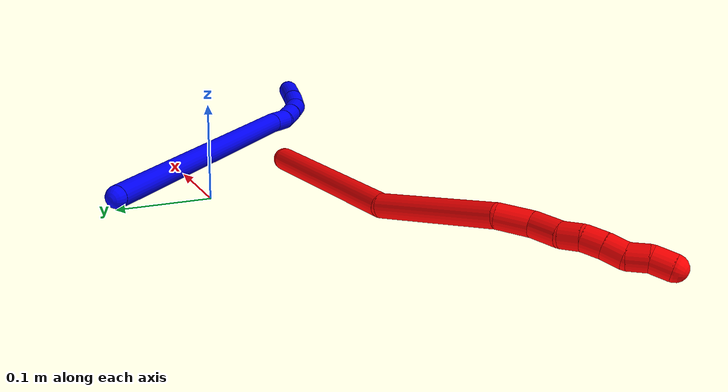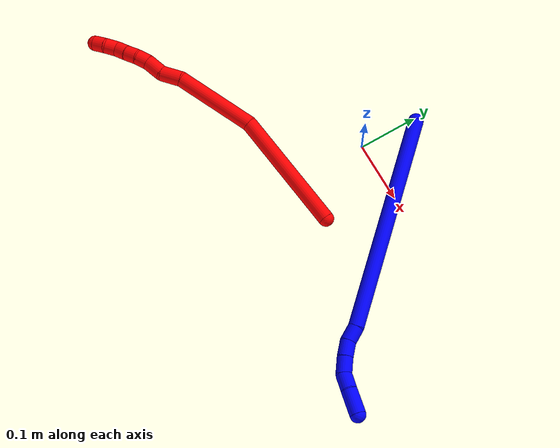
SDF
<sdf version="1.7">
 <world name="default">
  <model name="photoneo_s_sensor">
   <static>1</static>
   <pose>0 0 2 1.57079 1.57079 3.14159</pose>
   <link name="link">
    <inertial><mass>0.1</mass></inertial>
    <sensor name="sensor" type="depth">
     <update_rate>30</update_rate>
     <camera>
      <horizontal_fov>1.22</horizontal_fov>
      <image><width>1920</width><height>1200</height><format>B8G8R8</format></image>
      <clip><near>0.1</near><far>4</far></clip>
      <depth_camera><output>points</output></depth_camera>
     </camera>
     <plugin name="camera_plugin" filename="libgazebo_ros_depth_camera.so">
      <baseline>0.2</baseline>
      <alwaysOn>1</alwaysOn>
      <updateRate>0.0</updateRate>
      <cameraName>camera_ir</cameraName>
      <imageTopicName>/camera/color/image_raw</imageTopicName>
      <cameraInfoTopicName>/camera/color/camera_info</cameraInfoTopicName>
      <depthImageTopicName>/camera/depth/image_raw</depthImageTopicName>
      <depthImageCameraInfoTopicName>/camera/depth/camera_info</depthImageCameraInfoTopicName>
      <pointCloudTopicName>/camera/depth/points</pointCloudTopicName>
      <frameName>fr_optical</frameName>
      <pointCloudCutoff>0.1</pointCloudCutoff>
      <pointCloudCutoffMax>2.0</pointCloudCutoffMax>
      <distortionK1>0</distortionK1>
      <distortionK2>0</distortionK2>
      <distortionK3>0</distortionK3>
      <distortionT1>0</distortionT1>
      <distortionT2>0</distortionT2>
      <CxPrime>0</CxPrime>
      <Cx>0</Cx>
      <Cy>0</Cy>
      <focalLength>0</focalLength>
      <hackBaseline>0</hackBaseline>
     </plugin>
    </sensor>
   </link>
  </model>
  <model name="bin">
   <static>1</static>
   <link name="bottom">
    <collision name="collision-bottom">
     <pose>0 0 -0.01 0 -0 0</pose>
     <geometry><box><size>0.8 0.6 0.02</size></box></geometry>
     <surface>
      <friction><ode><mu>100</mu><mu2>100</mu2></ode></friction>
      <contact><collide_bitmask>65535</collide_bitmask></contact>
     </surface>
    </collision>
   </link>
   <link name="west_wall">
    <collision name="collision-west_wall">
     <pose>-0.41 0 0.1 0 -0 0</pose>
     <geometry><box><size>0.02 0.6 0.2</size></box></geometry>
     <surface>
      <friction><ode><mu>100</mu><mu2>100</mu2></ode></friction>
      <contact><collide_bitmask>65535</collide_bitmask></contact>
     </surface>
    </collision>
   </link>
   <link name="east_wall">
    <collision name="collision-east_wall">
     <pose>0.41 0 0.1 0 -0 0</pose>
     <geometry><box><size>0.02 0.6 0.2</size></box></geometry>
     <surface>
      <friction><ode><mu>100</mu><mu2>100</mu2></ode></friction>
      <contact><collide_bitmask>65535</collide_bitmask></contact>
     </surface>
    </collision>
   </link>
   <link name="south_wall">
    <collision name="collision-south_wall">
     <pose>0 -0.31 0.1 0 -0 0</pose>
     <geometry><box><size>0.8 0.02 0.2</size></box></geometry>
     <surface>
      <friction><ode><mu>100</mu><mu2>100</mu2></ode></friction>
      <contact><collide_bitmask>65535</collide_bitmask></contact>
     </surface>
    </collision>
   </link>
   <link name="north_wall">
    <collision name="collision-north_wall">
     <pose>0 0.31 0.1 0 -0 0</pose>
     <geometry><box><size>0.8 0.02 0.2</size></box></geometry>
     <surface>
      <friction><ode><mu>100</mu><mu2>100</mu2></ode></friction>
      <contact><collide_bitmask>65535</collide_bitmask></contact>
     </surface>
    </collision>
   </link>
  </model>
  <model name="1">
   <static>0</static>
   <link name="1">
    <collision name="collision-cylinder-e_1_1_4">
     <pose>0.007747 -0.009947 0.177189 0.05608 0.043627 0.001224</pose>
     <geometry><cylinder><radius>0.0125</radius><length>0.355274</length></cylinder></geometry>
     <surface>
      <friction><ode><mu>1.16</mu><mu2>1.16</mu2><slip1>0</slip1><slip2>0</slip2></ode></friction>
      <contact><ode><kp>1e+06</kp><kd>1</kd><max_vel>0</max_vel><min_depth>0.001</min_depth></ode></contact>
     </surface>
    </collision>
    <visual name="visual-cylinder-e_1_1_4">
     <pose>0.007747 -0.009947 0.177189 0.05608 0.043627 0.001224</pose>
     <geometry><cylinder><radius>0.0125</radius><length>0.355274</length></cylinder></geometry>
     <material><ambient>0 0 1 1</ambient></material>
    </visual>
    <collision name="collision-cylinder-e_2_4_5">
     <pose>0.013255 -0.020672 0.36704 0.061323 -0.174756 -0.005374</pose>
     <geometry><cylinder><radius>0.0125</radius><length>0.025763</length></cylinder></geometry>
     <surface>
      <friction><ode><mu>1.16</mu><mu2>1.16</mu2><slip1>0</slip1><slip2>0</slip2></ode></friction>
      <contact><ode><kp>1e+06</kp><kd>1</kd><max_vel>0</max_vel><min_depth>0.001</min_depth></ode></contact>
     </surface>
    </collision>
    <visual name="visual-cylinder-e_2_4_5">
     <pose>0.013255 -0.020672 0.36704 0.061323 -0.174756 -0.005374</pose>
     <geometry><cylinder><radius>0.0125</radius><length>0.025763</length></cylinder></geometry>
     <material><ambient>0 0 1 1</ambient></material>
    </visual>
    <collision name="collision-cylinder-e_3_5_6">
     <pose>0.012697 -0.020542 0.392455 -0.071066 0.130795 -0.004656</pose>
     <geometry><cylinder><radius>0.0125</radius><length>0.025792</length></cylinder></geometry>
     <surface>
      <friction><ode><mu>1.16</mu><mu2>1.16</mu2><slip1>0</slip1><slip2>0</slip2></ode></friction>
      <contact><ode><kp>1e+06</kp><kd>1</kd><max_vel>0</max_vel><min_depth>0.001</min_depth></ode></contact>
     </surface>
    </collision>
    <visual name="visual-cylinder-e_3_5_6">
     <pose>0.012697 -0.020542 0.392455 -0.071066 0.130795 -0.004656</pose>
     <geometry><cylinder><radius>0.0125</radius><length>0.025792</length></cylinder></geometry>
     <material><ambient>0 0 1 1</ambient></material>
    </visual>
    <collision name="collision-cylinder-e_4_6_7">
     <pose>0.017607 -0.019044 0.418262 -0.045157 0.24218 -0.005496</pose>
     <geometry><cylinder><radius>0.0125</radius><length>0.026919</length></cylinder></geometry>
     <surface>
      <friction><ode><mu>1.16</mu><mu2>1.16</mu2><slip1>0</slip1><slip2>0</slip2></ode></friction>
      <contact><ode><kp>1e+06</kp><kd>1</kd><max_vel>0</max_vel><min_depth>0.001</min_depth></ode></contact>
     </surface>
    </collision>
    <visual name="visual-cylinder-e_4_6_7">
     <pose>0.017607 -0.019044 0.418262 -0.045157 0.24218 -0.005496</pose>
     <geometry><cylinder><radius>0.0125</radius><length>0.026919</length></cylinder></geometry>
     <material><ambient>0 0 1 1</ambient></material>
    </visual>
    <collision name="collision-cylinder-e_5_7_8">
     <pose>0.028088 -0.015578 0.44183 -0.267026 0.58711 -0.081157</pose>
     <geometry><cylinder><radius>0.0125</radius><length>0.026187</length></cylinder></geometry>
     <surface>
      <friction><ode><mu>1.16</mu><mu2>1.16</mu2><slip1>0</slip1><slip2>0</slip2></ode></friction>
      <contact><ode><kp>1e+06</kp><kd>1</kd><max_vel>0</max_vel><min_depth>0.001</min_depth></ode></contact>
     </surface>
    </collision>
    <visual name="visual-cylinder-e_5_7_8">
     <pose>0.028088 -0.015578 0.44183 -0.267026 0.58711 -0.081157</pose>
     <geometry><cylinder><radius>0.0125</radius><length>0.026187</length></cylinder></geometry>
     <material><ambient>0 0 1 1</ambient></material>
    </visual>
    <collision name="collision-cylinder-e_6_8_2">
     <pose>0.047317 -0.010789 0.468288 -0.119365 0.640813 -0.039652</pose>
     <geometry><cylinder><radius>0.0125</radius><length>0.040064</length></cylinder></geometry>
     <surface>
      <friction><ode><mu>1.16</mu><mu2>1.16</mu2><slip1>0</slip1><slip2>0</slip2></ode></friction>
      <contact><ode><kp>1e+06</kp><kd>1</kd><max_vel>0</max_vel><min_depth>0.001</min_depth></ode></contact>
     </surface>
    </collision>
    <visual name="visual-cylinder-e_6_8_2">
     <pose>0.047317 -0.010789 0.468288 -0.119365 0.640813 -0.039652</pose>
     <geometry><cylinder><radius>0.0125</radius><length>0.040064</length></cylinder></geometry>
     <material><ambient>0 0 1 1</ambient></material>
    </visual>
    <collision name="collision-sphere-2">
     <pose>0.059294 -0.008877 0.484232 0 -0 0</pose>
     <geometry><sphere><radius>0.0125</radius></sphere></geometry>
     <surface>
      <friction><ode><mu>1.16</mu><mu2>1.16</mu2><slip1>0</slip1><slip2>0</slip2></ode></friction>
      <contact><ode><kp>1e+06</kp><kd>1</kd><max_vel>0</max_vel><min_depth>0.001</min_depth></ode></contact>
     </surface>
    </collision>
    <visual name="visual-sphere-2">
     <pose>0.059294 -0.008877 0.484232 0 -0 0</pose>
     <geometry><sphere><radius>0.0125</radius></sphere></geometry>
     <material><ambient>0 0 1 1</ambient></material>
    </visual>
    <collision name="collision-sphere-4">
     <pose>0.015495 -0.019895 0.354378 0 -0 0</pose>
     <geometry><sphere><radius>0.0125</radius></sphere></geometry>
     <surface>
      <friction><ode><mu>1.16</mu><mu2>1.16</mu2><slip1>0</slip1><slip2>0</slip2></ode></friction>
      <contact><ode><kp>1e+06</kp><kd>1</kd><max_vel>0</max_vel><min_depth>0.001</min_depth></ode></contact>
     </surface>
    </collision>
    <visual name="visual-sphere-4">
     <pose>0.015495 -0.019895 0.354378 0 -0 0</pose>
     <geometry><sphere><radius>0.0125</radius></sphere></geometry>
     <material><ambient>0 0 1 1</ambient></material>
    </visual>
    <collision name="collision-sphere-1">
     <geometry><sphere><radius>0.0125</radius></sphere></geometry>
     <surface>
      <friction><ode><mu>1.16</mu><mu2>1.16</mu2><slip1>0</slip1><slip2>0</slip2></ode></friction>
      <contact><ode><kp>1e+06</kp><kd>1</kd><max_vel>0</max_vel><min_depth>0.001</min_depth></ode></contact>
     </surface>
    </collision>
    <visual name="visual-sphere-1">
     <geometry><sphere><radius>0.0125</radius></sphere></geometry>
     <material><ambient>0 0 1 1</ambient></material>
    </visual>
    <collision name="collision-sphere-8">
     <pose>0.035341 -0.012701 0.452345 0 -0 0</pose>
     <geometry><sphere><radius>0.0125</radius></sphere></geometry>
     <surface>
      <friction><ode><mu>1.16</mu><mu2>1.16</mu2><slip1>0</slip1><slip2>0</slip2></ode></friction>
      <contact><ode><kp>1e+06</kp><kd>1</kd><max_vel>0</max_vel><min_depth>0.001</min_depth></ode></contact>
     </surface>
    </collision>
    <visual name="visual-sphere-8">
     <pose>0.035341 -0.012701 0.452345 0 -0 0</pose>
     <geometry><sphere><radius>0.0125</radius></sphere></geometry>
     <material><ambient>0 0 1 1</ambient></material>
    </visual>
    <collision name="collision-sphere-5">
     <pose>0.011015 -0.021449 0.379702 0 -0 0</pose>
     <geometry><sphere><radius>0.0125</radius></sphere></geometry>
     <surface>
      <friction><ode><mu>1.16</mu><mu2>1.16</mu2><slip1>0</slip1><slip2>0</slip2></ode></friction>
      <contact><ode><kp>1e+06</kp><kd>1</kd><max_vel>0</max_vel><min_depth>0.001</min_depth></ode></contact>
     </surface>
    </collision>
    <visual name="visual-sphere-5">
     <pose>0.011015 -0.021449 0.379702 0 -0 0</pose>
     <geometry><sphere><radius>0.0125</radius></sphere></geometry>
     <material><ambient>0 0 1 1</ambient></material>
    </visual>
    <collision name="collision-sphere-6">
     <pose>0.014379 -0.019634 0.405208 0 -0 0</pose>
     <geometry><sphere><radius>0.0125</radius></sphere></geometry>
     <surface>
      <friction><ode><mu>1.16</mu><mu2>1.16</mu2><slip1>0</slip1><slip2>0</slip2></ode></friction>
      <contact><ode><kp>1e+06</kp><kd>1</kd><max_vel>0</max_vel><min_depth>0.001</min_depth></ode></contact>
     </surface>
    </collision>
    <visual name="visual-sphere-6">
     <pose>0.014379 -0.019634 0.405208 0 -0 0</pose>
     <geometry><sphere><radius>0.0125</radius></sphere></geometry>
     <material><ambient>0 0 1 1</ambient></material>
    </visual>
    <collision name="collision-sphere-7">
     <pose>0.020835 -0.018454 0.431316 0 -0 0</pose>
     <geometry><sphere><radius>0.0125</radius></sphere></geometry>
     <surface>
      <friction><ode><mu>1.16</mu><mu2>1.16</mu2><slip1>0</slip1><slip2>0</slip2></ode></friction>
      <contact><ode><kp>1e+06</kp><kd>1</kd><max_vel>0</max_vel><min_depth>0.001</min_depth></ode></contact>
     </surface>
    </collision>
    <visual name="visual-sphere-7">
     <pose>0.020835 -0.018454 0.431316 0 -0 0</pose>
     <geometry><sphere><radius>0.0125</radius></sphere></geometry>
     <material><ambient>0 0 1 1</ambient></material>
    </visual>
    <inertial>
     <pose>0.013053 -0.011898 0.24824 0 -0 0</pose>
     <mass>0.5</mass>
     <inertia>
      <ixx>0.003771</ixx>
      <ixy>0</ixy>
      <ixz>0</ixz>
      <iyy>0.003765</iyy>
      <iyz>0</iyz>
      <izz>7.7e-05</izz>
     </inertia>
    </inertial>
   </link>
   <pose>0.008233 0.096355 0.011497 1.51234 0.054178 0.707566</pose>
  </model>
  <model name="2">
   <static>0</static>
   <link name="2">
    <collision name="collision-cylinder-e_1_1_4">
     <pose>-0.030995 -0.038597 0.088256 0.412267 -0.311306 -0.065603</pose>
     <geometry><cylinder><radius>0.0125</radius><length>0.202382</length></cylinder></geometry>
     <surface>
      <friction><ode><mu>1.16</mu><mu2>1.16</mu2><slip1>0</slip1><slip2>0</slip2></ode></friction>
      <contact><ode><kp>1e+06</kp><kd>1</kd><max_vel>0</max_vel><min_depth>0.001</min_depth></ode></contact>
     </surface>
    </collision>
    <visual name="visual-cylinder-e_1_1_4">
     <pose>-0.030995 -0.038597 0.088256 0.412267 -0.311306 -0.065603</pose>
     <geometry><cylinder><radius>0.0125</radius><length>0.202382</length></cylinder></geometry>
     <material><ambient>1 0 0 1</ambient></material>
    </visual>
    <collision name="collision-cylinder-e_2_4_5">
     <pose>-0.088841 -0.079008 0.236776 0.030084 -0.41899 -0.006397</pose>
     <geometry><cylinder><radius>0.0125</radius><length>0.131999</length></cylinder></geometry>
     <surface>
      <friction><ode><mu>1.16</mu><mu2>1.16</mu2><slip1>0</slip1><slip2>0</slip2></ode></friction>
      <contact><ode><kp>1e+06</kp><kd>1</kd><max_vel>0</max_vel><min_depth>0.001</min_depth></ode></contact>
     </surface>
    </collision>
    <visual name="visual-cylinder-e_2_4_5">
     <pose>-0.088841 -0.079008 0.236776 0.030084 -0.41899 -0.006397</pose>
     <geometry><cylinder><radius>0.0125</radius><length>0.131999</length></cylinder></geometry>
     <material><ambient>1 0 0 1</ambient></material>
    </visual>
    <collision name="collision-cylinder-e_3_5_6">
     <pose>-0.11863 -0.077905 0.313672 -0.173589 -0.172256 0.015025</pose>
     <geometry><cylinder><radius>0.0125</radius><length>0.034279</length></cylinder></geometry>
     <surface>
      <friction><ode><mu>1.16</mu><mu2>1.16</mu2><slip1>0</slip1><slip2>0</slip2></ode></friction>
      <contact><ode><kp>1e+06</kp><kd>1</kd><max_vel>0</max_vel><min_depth>0.001</min_depth></ode></contact>
     </surface>
    </collision>
    <visual name="visual-cylinder-e_3_5_6">
     <pose>-0.11863 -0.077905 0.313672 -0.173589 -0.172256 0.015025</pose>
     <geometry><cylinder><radius>0.0125</radius><length>0.034279</length></cylinder></geometry>
     <material><ambient>1 0 0 1</ambient></material>
    </visual>
    <collision name="collision-cylinder-e_4_6_7">
     <pose>-0.125259 -0.078163 0.344929 0.213756 -0.241833 -0.026071</pose>
     <geometry><cylinder><radius>0.0125</radius><length>0.030828</length></cylinder></geometry>
     <surface>
      <friction><ode><mu>1.16</mu><mu2>1.16</mu2><slip1>0</slip1><slip2>0</slip2></ode></friction>
      <contact><ode><kp>1e+06</kp><kd>1</kd><max_vel>0</max_vel><min_depth>0.001</min_depth></ode></contact>
     </surface>
    </collision>
    <visual name="visual-cylinder-e_4_6_7">
     <pose>-0.125259 -0.078163 0.344929 0.213756 -0.241833 -0.026071</pose>
     <geometry><cylinder><radius>0.0125</radius><length>0.030828</length></cylinder></geometry>
     <material><ambient>1 0 0 1</ambient></material>
    </visual>
    <collision name="collision-cylinder-e_5_7_8">
     <pose>-0.132334 -0.080753 0.369147 -0.060869 -0.338445 0.010403</pose>
     <geometry><cylinder><radius>0.0125</radius><length>0.020378</length></cylinder></geometry>
     <surface>
      <friction><ode><mu>1.16</mu><mu2>1.16</mu2><slip1>0</slip1><slip2>0</slip2></ode></friction>
      <contact><ode><kp>1e+06</kp><kd>1</kd><max_vel>0</max_vel><min_depth>0.001</min_depth></ode></contact>
     </surface>
    </collision>
    <visual name="visual-cylinder-e_5_7_8">
     <pose>-0.132334 -0.080753 0.369147 -0.060869 -0.338445 0.010403</pose>
     <geometry><cylinder><radius>0.0125</radius><length>0.020378</length></cylinder></geometry>
     <material><ambient>1 0 0 1</ambient></material>
    </visual>
    <collision name="collision-cylinder-e_6_8_9">
     <pose>-0.136639 -0.079633 0.388713 -0.053591 -0.092087 0.00247</pose>
     <geometry><cylinder><radius>0.0125</radius><length>0.020058</length></cylinder></geometry>
     <surface>
      <friction><ode><mu>1.16</mu><mu2>1.16</mu2><slip1>0</slip1><slip2>0</slip2></ode></friction>
      <contact><ode><kp>1e+06</kp><kd>1</kd><max_vel>0</max_vel><min_depth>0.001</min_depth></ode></contact>
     </surface>
    </collision>
    <visual name="visual-cylinder-e_6_8_9">
     <pose>-0.136639 -0.079633 0.388713 -0.053591 -0.092087 0.00247</pose>
     <geometry><cylinder><radius>0.0125</radius><length>0.020058</length></cylinder></geometry>
     <material><ambient>1 0 0 1</ambient></material>
    </visual>
    <collision name="collision-cylinder-e_7_9_10">
     <pose>-0.137806 -0.079436 0.408703 0.03366 -0.024456 -0.000412</pose>
     <geometry><cylinder><radius>0.0125</radius><length>0.020054</length></cylinder></geometry>
     <surface>
      <friction><ode><mu>1.16</mu><mu2>1.16</mu2><slip1>0</slip1><slip2>0</slip2></ode></friction>
      <contact><ode><kp>1e+06</kp><kd>1</kd><max_vel>0</max_vel><min_depth>0.001</min_depth></ode></contact>
     </surface>
    </collision>
    <visual name="visual-cylinder-e_7_9_10">
     <pose>-0.137806 -0.079436 0.408703 0.03366 -0.024456 -0.000412</pose>
     <geometry><cylinder><radius>0.0125</radius><length>0.020054</length></cylinder></geometry>
     <material><ambient>1 0 0 1</ambient></material>
    </visual>
    <collision name="collision-cylinder-e_8_10_11">
     <pose>-0.140959 -0.077297 0.427969 -0.261667 -0.294833 0.039074</pose>
     <geometry><cylinder><radius>0.0125</radius><length>0.020008</length></cylinder></geometry>
     <surface>
      <friction><ode><mu>1.16</mu><mu2>1.16</mu2><slip1>0</slip1><slip2>0</slip2></ode></friction>
      <contact><ode><kp>1e+06</kp><kd>1</kd><max_vel>0</max_vel><min_depth>0.001</min_depth></ode></contact>
     </surface>
    </collision>
    <visual name="visual-cylinder-e_8_10_11">
     <pose>-0.140959 -0.077297 0.427969 -0.261667 -0.294833 0.039074</pose>
     <geometry><cylinder><radius>0.0125</radius><length>0.020008</length></cylinder></geometry>
     <material><ambient>1 0 0 1</ambient></material>
    </visual>
    <collision name="collision-cylinder-e_9_11_2">
     <pose>-0.143977 -0.073473 0.44713 -0.135059 -0.011141 0.000754</pose>
     <geometry><cylinder><radius>0.0125</radius><length>0.020012</length></cylinder></geometry>
     <surface>
      <friction><ode><mu>1.16</mu><mu2>1.16</mu2><slip1>0</slip1><slip2>0</slip2></ode></friction>
      <contact><ode><kp>1e+06</kp><kd>1</kd><max_vel>0</max_vel><min_depth>0.001</min_depth></ode></contact>
     </surface>
    </collision>
    <visual name="visual-cylinder-e_9_11_2">
     <pose>-0.143977 -0.073473 0.44713 -0.135059 -0.011141 0.000754</pose>
     <geometry><cylinder><radius>0.0125</radius><length>0.020012</length></cylinder></geometry>
     <material><ambient>1 0 0 1</ambient></material>
    </visual>
    <collision name="collision-sphere-2">
     <pose>-0.144089 -0.072126 0.457044 0 -0 0</pose>
     <geometry><sphere><radius>0.0125</radius></sphere></geometry>
     <surface>
      <friction><ode><mu>1.16</mu><mu2>1.16</mu2><slip1>0</slip1><slip2>0</slip2></ode></friction>
      <contact><ode><kp>1e+06</kp><kd>1</kd><max_vel>0</max_vel><min_depth>0.001</min_depth></ode></contact>
     </surface>
    </collision>
    <visual name="visual-sphere-2">
     <pose>-0.144089 -0.072126 0.457044 0 -0 0</pose>
     <geometry><sphere><radius>0.0125</radius></sphere></geometry>
     <material><ambient>1 0 0 1</ambient></material>
    </visual>
    <collision name="collision-sphere-11">
     <pose>-0.143866 -0.07482 0.437215 0 -0 0</pose>
     <geometry><sphere><radius>0.0125</radius></sphere></geometry>
     <surface>
      <friction><ode><mu>1.16</mu><mu2>1.16</mu2><slip1>0</slip1><slip2>0</slip2></ode></friction>
      <contact><ode><kp>1e+06</kp><kd>1</kd><max_vel>0</max_vel><min_depth>0.001</min_depth></ode></contact>
     </surface>
    </collision>
    <visual name="visual-sphere-11">
     <pose>-0.143866 -0.07482 0.437215 0 -0 0</pose>
     <geometry><sphere><radius>0.0125</radius></sphere></geometry>
     <material><ambient>1 0 0 1</ambient></material>
    </visual>
    <collision name="collision-sphere-10">
     <pose>-0.138052 -0.079773 0.418722 0 -0 0</pose>
     <geometry><sphere><radius>0.0125</radius></sphere></geometry>
     <surface>
      <friction><ode><mu>1.16</mu><mu2>1.16</mu2><slip1>0</slip1><slip2>0</slip2></ode></friction>
      <contact><ode><kp>1e+06</kp><kd>1</kd><max_vel>0</max_vel><min_depth>0.001</min_depth></ode></contact>
     </surface>
    </collision>
    <visual name="visual-sphere-10">
     <pose>-0.138052 -0.079773 0.418722 0 -0 0</pose>
     <geometry><sphere><radius>0.0125</radius></sphere></geometry>
     <material><ambient>1 0 0 1</ambient></material>
    </visual>
    <collision name="collision-sphere-9">
     <pose>-0.137561 -0.079098 0.398685 0 -0 0</pose>
     <geometry><sphere><radius>0.0125</radius></sphere></geometry>
     <surface>
      <friction><ode><mu>1.16</mu><mu2>1.16</mu2><slip1>0</slip1><slip2>0</slip2></ode></friction>
      <contact><ode><kp>1e+06</kp><kd>1</kd><max_vel>0</max_vel><min_depth>0.001</min_depth></ode></contact>
     </surface>
    </collision>
    <visual name="visual-sphere-9">
     <pose>-0.137561 -0.079098 0.398685 0 -0 0</pose>
     <geometry><sphere><radius>0.0125</radius></sphere></geometry>
     <material><ambient>1 0 0 1</ambient></material>
    </visual>
    <collision name="collision-sphere-4">
     <pose>-0.06199 -0.077194 0.176513 0 -0 0</pose>
     <geometry><sphere><radius>0.0125</radius></sphere></geometry>
     <surface>
      <friction><ode><mu>1.16</mu><mu2>1.16</mu2><slip1>0</slip1><slip2>0</slip2></ode></friction>
      <contact><ode><kp>1e+06</kp><kd>1</kd><max_vel>0</max_vel><min_depth>0.001</min_depth></ode></contact>
     </surface>
    </collision>
    <visual name="visual-sphere-4">
     <pose>-0.06199 -0.077194 0.176513 0 -0 0</pose>
     <geometry><sphere><radius>0.0125</radius></sphere></geometry>
     <material><ambient>1 0 0 1</ambient></material>
    </visual>
    <collision name="collision-sphere-1">
     <geometry><sphere><radius>0.0125</radius></sphere></geometry>
     <surface>
      <friction><ode><mu>1.16</mu><mu2>1.16</mu2><slip1>0</slip1><slip2>0</slip2></ode></friction>
      <contact><ode><kp>1e+06</kp><kd>1</kd><max_vel>0</max_vel><min_depth>0.001</min_depth></ode></contact>
     </surface>
    </collision>
    <visual name="visual-sphere-1">
     <geometry><sphere><radius>0.0125</radius></sphere></geometry>
     <material><ambient>1 0 0 1</ambient></material>
    </visual>
    <collision name="collision-sphere-8">
     <pose>-0.135717 -0.080168 0.37874 0 -0 0</pose>
     <geometry><sphere><radius>0.0125</radius></sphere></geometry>
     <surface>
      <friction><ode><mu>1.16</mu><mu2>1.16</mu2><slip1>0</slip1><slip2>0</slip2></ode></friction>
      <contact><ode><kp>1e+06</kp><kd>1</kd><max_vel>0</max_vel><min_depth>0.001</min_depth></ode></contact>
     </surface>
    </collision>
    <visual name="visual-sphere-8">
     <pose>-0.135717 -0.080168 0.37874 0 -0 0</pose>
     <geometry><sphere><radius>0.0125</radius></sphere></geometry>
     <material><ambient>1 0 0 1</ambient></material>
    </visual>
    <collision name="collision-sphere-5">
     <pose>-0.115692 -0.080821 0.29704 0 -0 0</pose>
     <geometry><sphere><radius>0.0125</radius></sphere></geometry>
     <surface>
      <friction><ode><mu>1.16</mu><mu2>1.16</mu2><slip1>0</slip1><slip2>0</slip2></ode></friction>
      <contact><ode><kp>1e+06</kp><kd>1</kd><max_vel>0</max_vel><min_depth>0.001</min_depth></ode></contact>
     </surface>
    </collision>
    <visual name="visual-sphere-5">
     <pose>-0.115692 -0.080821 0.29704 0 -0 0</pose>
     <geometry><sphere><radius>0.0125</radius></sphere></geometry>
     <material><ambient>1 0 0 1</ambient></material>
    </visual>
    <collision name="collision-sphere-6">
     <pose>-0.121568 -0.074988 0.330304 0 -0 0</pose>
     <geometry><sphere><radius>0.0125</radius></sphere></geometry>
     <surface>
      <friction><ode><mu>1.16</mu><mu2>1.16</mu2><slip1>0</slip1><slip2>0</slip2></ode></friction>
      <contact><ode><kp>1e+06</kp><kd>1</kd><max_vel>0</max_vel><min_depth>0.001</min_depth></ode></contact>
     </surface>
    </collision>
    <visual name="visual-sphere-6">
     <pose>-0.121568 -0.074988 0.330304 0 -0 0</pose>
     <geometry><sphere><radius>0.0125</radius></sphere></geometry>
     <material><ambient>1 0 0 1</ambient></material>
    </visual>
    <collision name="collision-sphere-7">
     <pose>-0.128951 -0.081337 0.359554 0 -0 0</pose>
     <geometry><sphere><radius>0.0125</radius></sphere></geometry>
     <surface>
      <friction><ode><mu>1.16</mu><mu2>1.16</mu2><slip1>0</slip1><slip2>0</slip2></ode></friction>
      <contact><ode><kp>1e+06</kp><kd>1</kd><max_vel>0</max_vel><min_depth>0.001</min_depth></ode></contact>
     </surface>
    </collision>
    <visual name="visual-sphere-7">
     <pose>-0.128951 -0.081337 0.359554 0 -0 0</pose>
     <geometry><sphere><radius>0.0125</radius></sphere></geometry>
     <material><ambient>1 0 0 1</ambient></material>
    </visual>
    <inertial>
     <pose>-0.079661 -0.062347 0.223057 0 -0 0</pose>
     <mass>0.5</mass>
     <inertia>
      <ixx>0.000803</ixx>
      <ixy>0</ixy>
      <ixz>0</ixz>
      <iyy>0.000806</iyy>
      <iyz>0</iyz>
      <izz>0.000604</izz>
     </inertia>
    </inertial>
   </link>
   <pose>0.077705 -0.113684 0.011495 2.7048 1.25942 0.098876</pose>
  </model>
 </world>
</sdf>
